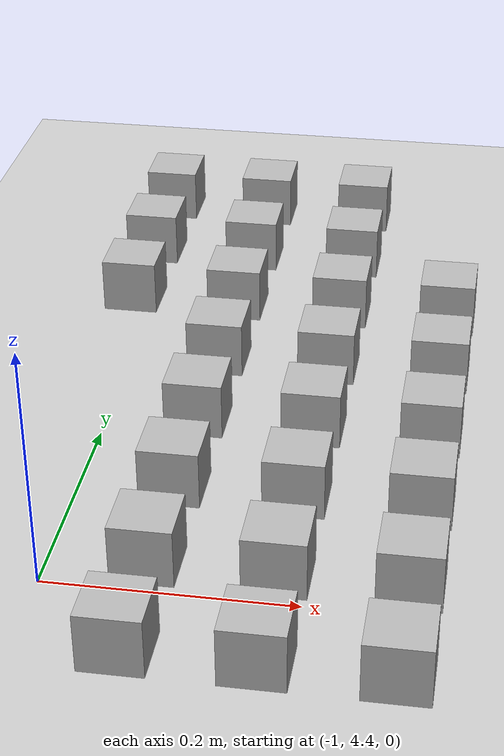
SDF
<sdf version="1.4">
 <world name="default">
  <model name="ground_plane">
   <static>1</static>
   <link name="link">
    <collision name="collision">
     <geometry><plane><normal>0 0 1</normal><size>100 100</size></plane></geometry>
     <surface><friction><ode><mu>100</mu><mu2>50</mu2></ode></friction></surface>
    </collision>
    <visual name="visual">
     <cast_shadows>0</cast_shadows>
     <geometry><plane><normal>0 0 1</normal><size>100 100</size></plane></geometry>
     <material>
      <script><uri>file://media/materials/scripts/gazebo.material</uri><name>Gazebo/Grey</name></script>
     </material>
    </visual>
    <velocity_decay><linear>0</linear><angular>0</angular></velocity_decay>
   </link>
  </model>
  <model name="at2">
   <static>0</static>
   <link name="link">
    <inertial>
     <mass>0.01</mass>
     <inertia><ixx>4e-05</ixx><ixy>0</ixy><ixz>0</ixz><iyy>4e-05</iyy><iyz>0</iyz><izz>4e-05</izz></inertia>
    </inertial>
    <visual name="visual">
     <geometry><box><size>0.05 0.05 0.05</size></box></geometry>
     <material>
      <script>
       <uri>model://at0/materials/scripts</uri>
       <uri>model://at0/materials/textures</uri>
       <name>at0/Diffuse</name>
      </script>
     </material>
    </visual>
    <collision name="collision">
     <geometry><box><size>0.05 0.05 0.05</size></box></geometry>
     <surface><friction><ode><mu>0.8</mu><mu2>0.7</mu2></ode></friction></surface>
    </collision>
    <velocity_decay><linear>0</linear><angular>0</angular></velocity_decay>
   </link>
   <pose>-0.922342 4.33291 0.025 0 -0 0</pose>
  </model>
  <model name="at3">
   <static>0</static>
   <link name="link">
    <inertial>
     <mass>0.01</mass>
     <inertia><ixx>4e-05</ixx><ixy>0</ixy><ixz>0</ixz><iyy>4e-05</iyy><iyz>0</iyz><izz>4e-05</izz></inertia>
    </inertial>
    <visual name="visual">
     <geometry><box><size>0.05 0.05 0.05</size></box></geometry>
     <material>
      <script>
       <uri>model://at0/materials/scripts</uri>
       <uri>model://at0/materials/textures</uri>
       <name>at0/Diffuse</name>
      </script>
     </material>
    </visual>
    <collision name="collision">
     <geometry><box><size>0.05 0.05 0.05</size></box></geometry>
     <surface><friction><ode><mu>0.8</mu><mu2>0.7</mu2></ode></friction></surface>
    </collision>
    <velocity_decay><linear>0</linear><angular>0</angular></velocity_decay>
   </link>
   <pose>-0.822342 4.33291 0.025 0 -0 0</pose>
  </model>
  <model name="at4">
   <static>0</static>
   <link name="link">
    <inertial>
     <mass>0.01</mass>
     <inertia><ixx>4e-05</ixx><ixy>0</ixy><ixz>0</ixz><iyy>4e-05</iyy><iyz>0</iyz><izz>4e-05</izz></inertia>
    </inertial>
    <visual name="visual">
     <geometry><box><size>0.05 0.05 0.05</size></box></geometry>
     <material>
      <script>
       <uri>model://at0/materials/scripts</uri>
       <uri>model://at0/materials/textures</uri>
       <name>at0/Diffuse</name>
      </script>
     </material>
    </visual>
    <collision name="collision">
     <geometry><box><size>0.05 0.05 0.05</size></box></geometry>
     <surface><friction><ode><mu>0.8</mu><mu2>0.7</mu2></ode></friction></surface>
    </collision>
    <velocity_decay><linear>0</linear><angular>0</angular></velocity_decay>
   </link>
   <pose>-0.722342 4.33291 0.025 0 -0 0</pose>
  </model>
  <model name="at10">
   <static>0</static>
   <link name="link">
    <inertial>
     <mass>0.01</mass>
     <inertia><ixx>4e-05</ixx><ixy>0</ixy><ixz>0</ixz><iyy>4e-05</iyy><iyz>0</iyz><izz>4e-05</izz></inertia>
    </inertial>
    <visual name="visual">
     <geometry><box><size>0.05 0.05 0.05</size></box></geometry>
     <material>
      <script>
       <uri>model://at0/materials/scripts</uri>
       <uri>model://at0/materials/textures</uri>
       <name>at0/Diffuse</name>
      </script>
     </material>
    </visual>
    <collision name="collision">
     <geometry><box><size>0.05 0.05 0.05</size></box></geometry>
     <surface><friction><ode><mu>0.8</mu><mu2>0.7</mu2></ode></friction></surface>
    </collision>
    <velocity_decay><linear>0</linear><angular>0</angular></velocity_decay>
   </link>
   <pose>-0.922342 4.43291 0.025 0 -0 0</pose>
  </model>
  <model name="at11">
   <static>0</static>
   <link name="link">
    <inertial>
     <mass>0.01</mass>
     <inertia><ixx>4e-05</ixx><ixy>0</ixy><ixz>0</ixz><iyy>4e-05</iyy><iyz>0</iyz><izz>4e-05</izz></inertia>
    </inertial>
    <visual name="visual">
     <geometry><box><size>0.05 0.05 0.05</size></box></geometry>
     <material>
      <script>
       <uri>model://at0/materials/scripts</uri>
       <uri>model://at0/materials/textures</uri>
       <name>at0/Diffuse</name>
      </script>
     </material>
    </visual>
    <collision name="collision">
     <geometry><box><size>0.05 0.05 0.05</size></box></geometry>
     <surface><friction><ode><mu>0.8</mu><mu2>0.7</mu2></ode></friction></surface>
    </collision>
    <velocity_decay><linear>0</linear><angular>0</angular></velocity_decay>
   </link>
   <pose>-0.822342 4.43291 0.025 0 -0 0</pose>
  </model>
  <model name="at12">
   <static>0</static>
   <link name="link">
    <inertial>
     <mass>0.01</mass>
     <inertia><ixx>4e-05</ixx><ixy>0</ixy><ixz>0</ixz><iyy>4e-05</iyy><iyz>0</iyz><izz>4e-05</izz></inertia>
    </inertial>
    <visual name="visual">
     <geometry><box><size>0.05 0.05 0.05</size></box></geometry>
     <material>
      <script>
       <uri>model://at0/materials/scripts</uri>
       <uri>model://at0/materials/textures</uri>
       <name>at0/Diffuse</name>
      </script>
     </material>
    </visual>
    <collision name="collision">
     <geometry><box><size>0.05 0.05 0.05</size></box></geometry>
     <surface><friction><ode><mu>0.8</mu><mu2>0.7</mu2></ode></friction></surface>
    </collision>
    <velocity_decay><linear>0</linear><angular>0</angular></velocity_decay>
   </link>
   <pose>-0.722342 4.43291 0.025 0 -0 0</pose>
  </model>
  <model name="at18">
   <static>0</static>
   <link name="link">
    <inertial>
     <mass>0.01</mass>
     <inertia><ixx>4e-05</ixx><ixy>0</ixy><ixz>0</ixz><iyy>4e-05</iyy><iyz>0</iyz><izz>4e-05</izz></inertia>
    </inertial>
    <visual name="visual">
     <geometry><box><size>0.05 0.05 0.05</size></box></geometry>
     <material>
      <script>
       <uri>model://at0/materials/scripts</uri>
       <uri>model://at0/materials/textures</uri>
       <name>at0/Diffuse</name>
      </script>
     </material>
    </visual>
    <collision name="collision">
     <geometry><box><size>0.05 0.05 0.05</size></box></geometry>
     <surface><friction><ode><mu>0.8</mu><mu2>0.7</mu2></ode></friction></surface>
    </collision>
    <velocity_decay><linear>0</linear><angular>0</angular></velocity_decay>
   </link>
   <pose>-0.922342 4.53291 0.025 0 -0 0</pose>
  </model>
  <model name="at19">
   <static>0</static>
   <link name="link">
    <inertial>
     <mass>0.01</mass>
     <inertia><ixx>4e-05</ixx><ixy>0</ixy><ixz>0</ixz><iyy>4e-05</iyy><iyz>0</iyz><izz>4e-05</izz></inertia>
    </inertial>
    <visual name="visual">
     <geometry><box><size>0.05 0.05 0.05</size></box></geometry>
     <material>
      <script>
       <uri>model://at0/materials/scripts</uri>
       <uri>model://at0/materials/textures</uri>
       <name>at0/Diffuse</name>
      </script>
     </material>
    </visual>
    <collision name="collision">
     <geometry><box><size>0.05 0.05 0.05</size></box></geometry>
     <surface><friction><ode><mu>0.8</mu><mu2>0.7</mu2></ode></friction></surface>
    </collision>
    <velocity_decay><linear>0</linear><angular>0</angular></velocity_decay>
   </link>
   <pose>-0.822342 4.53291 0.025 0 -0 0</pose>
  </model>
  <model name="at20">
   <static>0</static>
   <link name="link">
    <inertial>
     <mass>0.01</mass>
     <inertia><ixx>4e-05</ixx><ixy>0</ixy><ixz>0</ixz><iyy>4e-05</iyy><iyz>0</iyz><izz>4e-05</izz></inertia>
    </inertial>
    <visual name="visual">
     <geometry><box><size>0.05 0.05 0.05</size></box></geometry>
     <material>
      <script>
       <uri>model://at0/materials/scripts</uri>
       <uri>model://at0/materials/textures</uri>
       <name>at0/Diffuse</name>
      </script>
     </material>
    </visual>
    <collision name="collision">
     <geometry><box><size>0.05 0.05 0.05</size></box></geometry>
     <surface><friction><ode><mu>0.8</mu><mu2>0.7</mu2></ode></friction></surface>
    </collision>
    <velocity_decay><linear>0</linear><angular>0</angular></velocity_decay>
   </link>
   <pose>-0.722342 4.53291 0.025 0 -0 0</pose>
  </model>
  <model name="at26">
   <static>0</static>
   <link name="link">
    <inertial>
     <mass>0.01</mass>
     <inertia><ixx>4e-05</ixx><ixy>0</ixy><ixz>0</ixz><iyy>4e-05</iyy><iyz>0</iyz><izz>4e-05</izz></inertia>
    </inertial>
    <visual name="visual">
     <geometry><box><size>0.05 0.05 0.05</size></box></geometry>
     <material>
      <script>
       <uri>model://at0/materials/scripts</uri>
       <uri>model://at0/materials/textures</uri>
       <name>at0/Diffuse</name>
      </script>
     </material>
    </visual>
    <collision name="collision">
     <geometry><box><size>0.05 0.05 0.05</size></box></geometry>
     <surface><friction><ode><mu>0.8</mu><mu2>0.7</mu2></ode></friction></surface>
    </collision>
    <velocity_decay><linear>0</linear><angular>0</angular></velocity_decay>
   </link>
   <pose>-0.922342 4.63291 0.025 0 -0 0</pose>
  </model>
  <model name="at27">
   <static>0</static>
   <link name="link">
    <inertial>
     <mass>0.01</mass>
     <inertia><ixx>4e-05</ixx><ixy>0</ixy><ixz>0</ixz><iyy>4e-05</iyy><iyz>0</iyz><izz>4e-05</izz></inertia>
    </inertial>
    <visual name="visual">
     <geometry><box><size>0.05 0.05 0.05</size></box></geometry>
     <material>
      <script>
       <uri>model://at0/materials/scripts</uri>
       <uri>model://at0/materials/textures</uri>
       <name>at0/Diffuse</name>
      </script>
     </material>
    </visual>
    <collision name="collision">
     <geometry><box><size>0.05 0.05 0.05</size></box></geometry>
     <surface><friction><ode><mu>0.8</mu><mu2>0.7</mu2></ode></friction></surface>
    </collision>
    <velocity_decay><linear>0</linear><angular>0</angular></velocity_decay>
   </link>
   <pose>-0.822342 4.63291 0.025 0 -0 0</pose>
  </model>
  <model name="at28">
   <static>0</static>
   <link name="link">
    <inertial>
     <mass>0.01</mass>
     <inertia><ixx>4e-05</ixx><ixy>0</ixy><ixz>0</ixz><iyy>4e-05</iyy><iyz>0</iyz><izz>4e-05</izz></inertia>
    </inertial>
    <visual name="visual">
     <geometry><box><size>0.05 0.05 0.05</size></box></geometry>
     <material>
      <script>
       <uri>model://at0/materials/scripts</uri>
       <uri>model://at0/materials/textures</uri>
       <name>at0/Diffuse</name>
      </script>
     </material>
    </visual>
    <collision name="collision">
     <geometry><box><size>0.05 0.05 0.05</size></box></geometry>
     <surface><friction><ode><mu>0.8</mu><mu2>0.7</mu2></ode></friction></surface>
    </collision>
    <velocity_decay><linear>0</linear><angular>0</angular></velocity_decay>
   </link>
   <pose>-0.722342 4.63291 0.025 0 -0 0</pose>
  </model>
  <model name="at34">
   <static>0</static>
   <link name="link">
    <inertial>
     <mass>0.01</mass>
     <inertia><ixx>4e-05</ixx><ixy>0</ixy><ixz>0</ixz><iyy>4e-05</iyy><iyz>0</iyz><izz>4e-05</izz></inertia>
    </inertial>
    <visual name="visual">
     <geometry><box><size>0.05 0.05 0.05</size></box></geometry>
     <material>
      <script>
       <uri>model://at0/materials/scripts</uri>
       <uri>model://at0/materials/textures</uri>
       <name>at0/Diffuse</name>
      </script>
     </material>
    </visual>
    <collision name="collision">
     <geometry><box><size>0.05 0.05 0.05</size></box></geometry>
     <surface><friction><ode><mu>0.8</mu><mu2>0.7</mu2></ode></friction></surface>
    </collision>
    <velocity_decay><linear>0</linear><angular>0</angular></velocity_decay>
   </link>
   <pose>-0.922342 4.73291 0.025 0 -0 0</pose>
  </model>
  <model name="at35">
   <static>0</static>
   <link name="link">
    <inertial>
     <mass>0.01</mass>
     <inertia><ixx>4e-05</ixx><ixy>0</ixy><ixz>0</ixz><iyy>4e-05</iyy><iyz>0</iyz><izz>4e-05</izz></inertia>
    </inertial>
    <visual name="visual">
     <geometry><box><size>0.05 0.05 0.05</size></box></geometry>
     <material>
      <script>
       <uri>model://at0/materials/scripts</uri>
       <uri>model://at0/materials/textures</uri>
       <name>at0/Diffuse</name>
      </script>
     </material>
    </visual>
    <collision name="collision">
     <geometry><box><size>0.05 0.05 0.05</size></box></geometry>
     <surface><friction><ode><mu>0.8</mu><mu2>0.7</mu2></ode></friction></surface>
    </collision>
    <velocity_decay><linear>0</linear><angular>0</angular></velocity_decay>
   </link>
   <pose>-0.822342 4.73291 0.025 0 -0 0</pose>
  </model>
  <model name="at36">
   <static>0</static>
   <link name="link">
    <inertial>
     <mass>0.01</mass>
     <inertia><ixx>4e-05</ixx><ixy>0</ixy><ixz>0</ixz><iyy>4e-05</iyy><iyz>0</iyz><izz>4e-05</izz></inertia>
    </inertial>
    <visual name="visual">
     <geometry><box><size>0.05 0.05 0.05</size></box></geometry>
     <material>
      <script>
       <uri>model://at0/materials/scripts</uri>
       <uri>model://at0/materials/textures</uri>
       <name>at0/Diffuse</name>
      </script>
     </material>
    </visual>
    <collision name="collision">
     <geometry><box><size>0.05 0.05 0.05</size></box></geometry>
     <surface><friction><ode><mu>0.8</mu><mu2>0.7</mu2></ode></friction></surface>
    </collision>
    <velocity_decay><linear>0</linear><angular>0</angular></velocity_decay>
   </link>
   <pose>-0.722342 4.73291 0.025 0 -0 0</pose>
  </model>
  <model name="at41">
   <static>0</static>
   <link name="link">
    <inertial>
     <mass>0.01</mass>
     <inertia><ixx>4e-05</ixx><ixy>0</ixy><ixz>0</ixz><iyy>4e-05</iyy><iyz>0</iyz><izz>4e-05</izz></inertia>
    </inertial>
    <visual name="visual">
     <geometry><box><size>0.05 0.05 0.05</size></box></geometry>
     <material>
      <script>
       <uri>model://at0/materials/scripts</uri>
       <uri>model://at0/materials/textures</uri>
       <name>at0/Diffuse</name>
      </script>
     </material>
    </visual>
    <collision name="collision">
     <geometry><box><size>0.05 0.05 0.05</size></box></geometry>
     <surface><friction><ode><mu>0.8</mu><mu2>0.7</mu2></ode></friction></surface>
    </collision>
    <velocity_decay><linear>0</linear><angular>0</angular></velocity_decay>
   </link>
   <pose>-1.02234 4.83291 0.025 0 -0 0</pose>
  </model>
  <model name="at42">
   <static>0</static>
   <link name="link">
    <inertial>
     <mass>0.01</mass>
     <inertia><ixx>4e-05</ixx><ixy>0</ixy><ixz>0</ixz><iyy>4e-05</iyy><iyz>0</iyz><izz>4e-05</izz></inertia>
    </inertial>
    <visual name="visual">
     <geometry><box><size>0.05 0.05 0.05</size></box></geometry>
     <material>
      <script>
       <uri>model://at0/materials/scripts</uri>
       <uri>model://at0/materials/textures</uri>
       <name>at0/Diffuse</name>
      </script>
     </material>
    </visual>
    <collision name="collision">
     <geometry><box><size>0.05 0.05 0.05</size></box></geometry>
     <surface><friction><ode><mu>0.8</mu><mu2>0.7</mu2></ode></friction></surface>
    </collision>
    <velocity_decay><linear>0</linear><angular>0</angular></velocity_decay>
   </link>
   <pose>-0.922342 4.83291 0.025 0 -0 0</pose>
  </model>
  <model name="at43">
   <static>0</static>
   <link name="link">
    <inertial>
     <mass>0.01</mass>
     <inertia><ixx>4e-05</ixx><ixy>0</ixy><ixz>0</ixz><iyy>4e-05</iyy><iyz>0</iyz><izz>4e-05</izz></inertia>
    </inertial>
    <visual name="visual">
     <geometry><box><size>0.05 0.05 0.05</size></box></geometry>
     <material>
      <script>
       <uri>model://at0/materials/scripts</uri>
       <uri>model://at0/materials/textures</uri>
       <name>at0/Diffuse</name>
      </script>
     </material>
    </visual>
    <collision name="collision">
     <geometry><box><size>0.05 0.05 0.05</size></box></geometry>
     <surface><friction><ode><mu>0.8</mu><mu2>0.7</mu2></ode></friction></surface>
    </collision>
    <velocity_decay><linear>0</linear><angular>0</angular></velocity_decay>
   </link>
   <pose>-0.822342 4.83291 0.025 0 -0 0</pose>
  </model>
  <model name="at44">
   <static>0</static>
   <link name="link">
    <inertial>
     <mass>0.01</mass>
     <inertia><ixx>4e-05</ixx><ixy>0</ixy><ixz>0</ixz><iyy>4e-05</iyy><iyz>0</iyz><izz>4e-05</izz></inertia>
    </inertial>
    <visual name="visual">
     <geometry><box><size>0.05 0.05 0.05</size></box></geometry>
     <material>
      <script>
       <uri>model://at0/materials/scripts</uri>
       <uri>model://at0/materials/textures</uri>
       <name>at0/Diffuse</name>
      </script>
     </material>
    </visual>
    <collision name="collision">
     <geometry><box><size>0.05 0.05 0.05</size></box></geometry>
     <surface><friction><ode><mu>0.8</mu><mu2>0.7</mu2></ode></friction></surface>
    </collision>
    <velocity_decay><linear>0</linear><angular>0</angular></velocity_decay>
   </link>
   <pose>-0.722342 4.83291 0.025 0 -0 0</pose>
  </model>
  <model name="at49">
   <static>0</static>
   <link name="link">
    <inertial>
     <mass>0.01</mass>
     <inertia><ixx>4e-05</ixx><ixy>0</ixy><ixz>0</ixz><iyy>4e-05</iyy><iyz>0</iyz><izz>4e-05</izz></inertia>
    </inertial>
    <visual name="visual">
     <geometry><box><size>0.05 0.05 0.05</size></box></geometry>
     <material>
      <script>
       <uri>model://at0/materials/scripts</uri>
       <uri>model://at0/materials/textures</uri>
       <name>at0/Diffuse</name>
      </script>
     </material>
    </visual>
    <collision name="collision">
     <geometry><box><size>0.05 0.05 0.05</size></box></geometry>
     <surface><friction><ode><mu>0.8</mu><mu2>0.7</mu2></ode></friction></surface>
    </collision>
    <velocity_decay><linear>0</linear><angular>0</angular></velocity_decay>
   </link>
   <pose>-1.02234 4.93291 0.025 0 -0 0</pose>
  </model>
  <model name="at50">
   <static>0</static>
   <link name="link">
    <inertial>
     <mass>0.01</mass>
     <inertia><ixx>4e-05</ixx><ixy>0</ixy><ixz>0</ixz><iyy>4e-05</iyy><iyz>0</iyz><izz>4e-05</izz></inertia>
    </inertial>
    <visual name="visual">
     <geometry><box><size>0.05 0.05 0.05</size></box></geometry>
     <material>
      <script>
       <uri>model://at0/materials/scripts</uri>
       <uri>model://at0/materials/textures</uri>
       <name>at0/Diffuse</name>
      </script>
     </material>
    </visual>
    <collision name="collision">
     <geometry><box><size>0.05 0.05 0.05</size></box></geometry>
     <surface><friction><ode><mu>0.8</mu><mu2>0.7</mu2></ode></friction></surface>
    </collision>
    <velocity_decay><linear>0</linear><angular>0</angular></velocity_decay>
   </link>
   <pose>-0.922342 4.93291 0.025 0 -0 0</pose>
  </model>
  <model name="at51">
   <static>0</static>
   <link name="link">
    <inertial>
     <mass>0.01</mass>
     <inertia><ixx>4e-05</ixx><ixy>0</ixy><ixz>0</ixz><iyy>4e-05</iyy><iyz>0</iyz><izz>4e-05</izz></inertia>
    </inertial>
    <visual name="visual">
     <geometry><box><size>0.05 0.05 0.05</size></box></geometry>
     <material>
      <script>
       <uri>model://at0/materials/scripts</uri>
       <uri>model://at0/materials/textures</uri>
       <name>at0/Diffuse</name>
      </script>
     </material>
    </visual>
    <collision name="collision">
     <geometry><box><size>0.05 0.05 0.05</size></box></geometry>
     <surface><friction><ode><mu>0.8</mu><mu2>0.7</mu2></ode></friction></surface>
    </collision>
    <velocity_decay><linear>0</linear><angular>0</angular></velocity_decay>
   </link>
   <pose>-0.822342 4.93291 0.025 0 -0 0</pose>
  </model>
  <model name="at57">
   <static>0</static>
   <link name="link">
    <inertial>
     <mass>0.01</mass>
     <inertia><ixx>4e-05</ixx><ixy>0</ixy><ixz>0</ixz><iyy>4e-05</iyy><iyz>0</iyz><izz>4e-05</izz></inertia>
    </inertial>
    <visual name="visual">
     <geometry><box><size>0.05 0.05 0.05</size></box></geometry>
     <material>
      <script>
       <uri>model://at0/materials/scripts</uri>
       <uri>model://at0/materials/textures</uri>
       <name>at0/Diffuse</name>
      </script>
     </material>
    </visual>
    <collision name="collision">
     <geometry><box><size>0.05 0.05 0.05</size></box></geometry>
     <surface><friction><ode><mu>0.8</mu><mu2>0.7</mu2></ode></friction></surface>
    </collision>
    <velocity_decay><linear>0</linear><angular>0</angular></velocity_decay>
   </link>
   <pose>-1.02234 5.03291 0.025 0 -0 0</pose>
  </model>
  <model name="at58">
   <static>0</static>
   <link name="link">
    <inertial>
     <mass>0.01</mass>
     <inertia><ixx>4e-05</ixx><ixy>0</ixy><ixz>0</ixz><iyy>4e-05</iyy><iyz>0</iyz><izz>4e-05</izz></inertia>
    </inertial>
    <visual name="visual">
     <geometry><box><size>0.05 0.05 0.05</size></box></geometry>
     <material>
      <script>
       <uri>model://at0/materials/scripts</uri>
       <uri>model://at0/materials/textures</uri>
       <name>at0/Diffuse</name>
      </script>
     </material>
    </visual>
    <collision name="collision">
     <geometry><box><size>0.05 0.05 0.05</size></box></geometry>
     <surface><friction><ode><mu>0.8</mu><mu2>0.7</mu2></ode></friction></surface>
    </collision>
    <velocity_decay><linear>0</linear><angular>0</angular></velocity_decay>
   </link>
   <pose>-0.922342 5.03291 0.025 0 -0 0</pose>
  </model>
  <model name="at59">
   <static>0</static>
   <link name="link">
    <inertial>
     <mass>0.01</mass>
     <inertia><ixx>4e-05</ixx><ixy>0</ixy><ixz>0</ixz><iyy>4e-05</iyy><iyz>0</iyz><izz>4e-05</izz></inertia>
    </inertial>
    <visual name="visual">
     <geometry><box><size>0.05 0.05 0.05</size></box></geometry>
     <material>
      <script>
       <uri>model://at0/materials/scripts</uri>
       <uri>model://at0/materials/textures</uri>
       <name>at0/Diffuse</name>
      </script>
     </material>
    </visual>
    <collision name="collision">
     <geometry><box><size>0.05 0.05 0.05</size></box></geometry>
     <surface><friction><ode><mu>0.8</mu><mu2>0.7</mu2></ode></friction></surface>
    </collision>
    <velocity_decay><linear>0</linear><angular>0</angular></velocity_decay>
   </link>
   <pose>-0.822342 5.03291 0.025 0 -0 0</pose>
  </model>
 </world>
</sdf>
